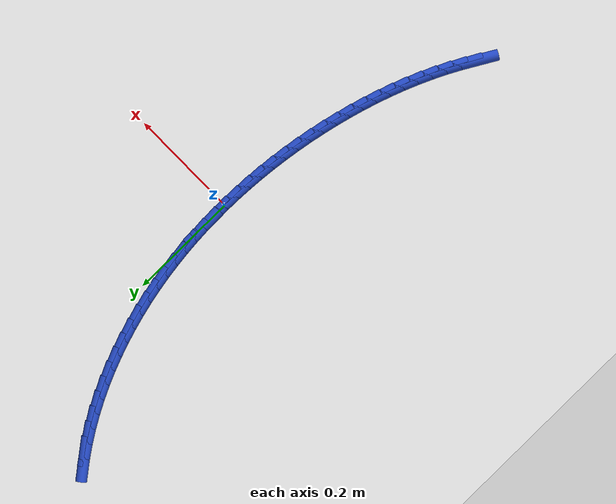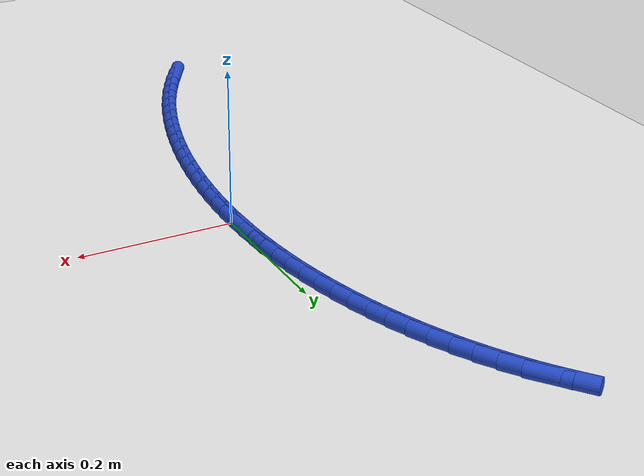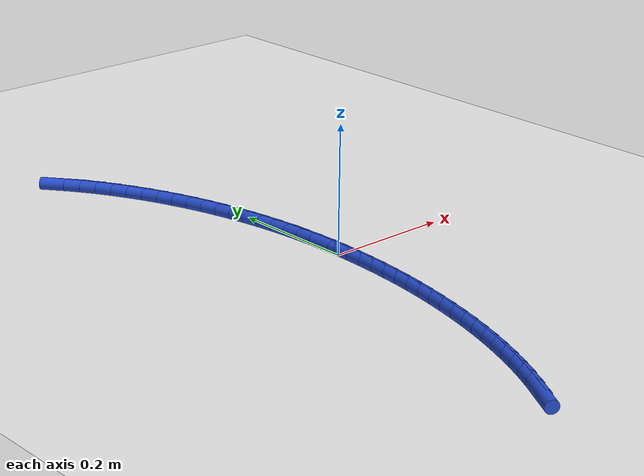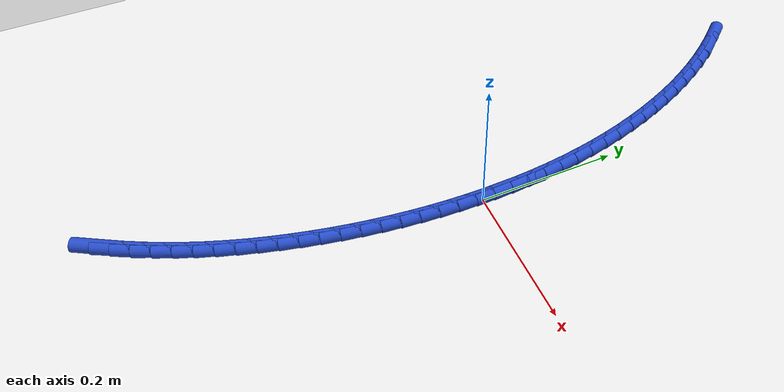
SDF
<sdf version="1.6">
 <world name="default">
  <model name="ground_plane">
   <static>1</static>
   <link name="link">
    <collision name="collision">
     <geometry><plane><normal>0 0 1</normal><size>100 100</size></plane></geometry>
     <surface><friction><ode><mu>100</mu><mu2>50</mu2></ode></friction></surface>
    </collision>
    <visual name="visual">
     <cast_shadows>0</cast_shadows>
     <geometry><plane><normal>0 0 1</normal><size>100 100</size></plane></geometry>
     <material>
      <script><uri>file://media/materials/scripts/gazebo.material</uri><name>Gazebo/WhiteGlow</name></script>
     </material>
    </visual>
   </link>
  </model>
  <model name="line">
   <link name="link_0">
    <pose>-1.3010426069826053e-17 -1.1102230246251565e-16 0.01 0 1.57 -1.5650336162759861</pose>
    <collision name="collision">
     <geometry><cylinder><radius>0.01</radius><length>0.08</length></cylinder></geometry>
    </collision>
    <visual name="visual">
     <material>
      <script><name>Gazebo/Blue</name><uri>file://media/materials/scripts/gazebo.material</uri></script>
     </material>
     <geometry><cylinder><radius>0.01</radius><length>0.08</length></cylinder></geometry>
    </visual>
   </link>
   <link name="link_1">
    <pose>-0.00015394781854984716 0.02671418491323485 0.01 0 1.57 -1.5384784487555527</pose>
    <collision name="collision">
     <geometry><cylinder><radius>0.01</radius><length>0.08</length></cylinder></geometry>
    </collision>
    <visual name="visual">
     <material>
      <script><name>Gazebo/Blue</name><uri>file://media/materials/scripts/gazebo.material</uri></script>
     </material>
     <geometry><cylinder><radius>0.01</radius><length>0.08</length></cylinder></geometry>
    </visual>
   </link>
   <link name="link_2">
    <pose>-0.0010168731685485336 0.05340606431002454 0.01 0 1.57 -1.5110991230828021</pose>
    <collision name="collision">
     <geometry><cylinder><radius>0.01</radius><length>0.08</length></cylinder></geometry>
    </collision>
    <visual name="visual">
     <material>
      <script><name>Gazebo/Blue</name><uri>file://media/materials/scripts/gazebo.material</uri></script>
     </material>
     <geometry><cylinder><radius>0.01</radius><length>0.08</length></cylinder></geometry>
    </visual>
   </link>
   <link name="link_3">
    <pose>-0.0026101452453956065 0.08006357672868039 0.01 0 1.57 -1.482902638969219</pose>
    <collision name="collision">
     <geometry><cylinder><radius>0.01</radius><length>0.08</length></cylinder></geometry>
    </collision>
    <visual name="visual">
     <material>
      <script><name>Gazebo/Blue</name><uri>file://media/materials/scripts/gazebo.material</uri></script>
     </material>
     <geometry><cylinder><radius>0.01</radius><length>0.08</length></cylinder></geometry>
    </visual>
   </link>
   <link name="link_4">
    <pose>-0.004955133244490608 0.10667466070751394 0.01 0 1.57 -1.4539016090968433</pose>
    <collision name="collision">
     <geometry><cylinder><radius>0.01</radius><length>0.08</length></cylinder></geometry>
    </collision>
    <visual name="visual">
     <material>
      <script><name>Gazebo/Blue</name><uri>file://media/materials/scripts/gazebo.material</uri></script>
     </material>
     <geometry><cylinder><radius>0.01</radius><length>0.08</length></cylinder></geometry>
    </visual>
   </link>
   <link name="link_5">
    <pose>-0.008073206361233065 0.13322725478483652 0.01 0 1.57 -1.42411477450039</pose>
    <collision name="collision">
     <geometry><cylinder><radius>0.01</radius><length>0.08</length></cylinder></geometry>
    </collision>
    <visual name="visual">
     <material>
      <script><name>Gazebo/Blue</name><uri>file://media/materials/scripts/gazebo.material</uri></script>
     </material>
     <geometry><cylinder><radius>0.01</radius><length>0.08</length></cylinder></geometry>
    </visual>
   </link>
   <link name="link_6">
    <pose>-0.011985733791022524 0.15970929749895976 0.01 0 1.57 -1.3935674610541722</pose>
    <collision name="collision">
     <geometry><cylinder><radius>0.01</radius><length>0.08</length></cylinder></geometry>
    </collision>
    <visual name="visual">
     <material>
      <script><name>Gazebo/Blue</name><uri>file://media/materials/scripts/gazebo.material</uri></script>
     </material>
     <geometry><cylinder><radius>0.01</radius><length>0.08</length></cylinder></geometry>
    </visual>
   </link>
   <link name="link_7">
    <pose>-0.016714084729258505 0.18610872738819487 0.01 0 1.57 -1.3622919516019611</pose>
    <collision name="collision">
     <geometry><cylinder><radius>0.01</radius><length>0.08</length></cylinder></geometry>
    </collision>
    <visual name="visual">
     <material>
      <script><name>Gazebo/Blue</name><uri>file://media/materials/scripts/gazebo.material</uri></script>
     </material>
     <geometry><cylinder><radius>0.01</radius><length>0.08</length></cylinder></geometry>
    </visual>
   </link>
   <link name="link_8">
    <pose>-0.022279628371340565 0.21241348299085358 0.01 0 1.57 -1.330327747234454</pose>
    <collision name="collision">
     <geometry><cylinder><radius>0.01</radius><length>0.08</length></cylinder></geometry>
    </collision>
    <visual name="visual">
     <material>
      <script><name>Gazebo/Blue</name><uri>file://media/materials/scripts/gazebo.material</uri></script>
     </material>
     <geometry><cylinder><radius>0.01</radius><length>0.08</length></cylinder></geometry>
    </visual>
   </link>
   <link name="link_9">
    <pose>-0.02870373391266822 0.23861150284524713 0.01 0 1.57 -1.2977178127041347</pose>
    <collision name="collision">
     <geometry><cylinder><radius>0.01</radius><length>0.08</length></cylinder></geometry>
    </collision>
    <visual name="visual">
     <material>
      <script><name>Gazebo/Blue</name><uri>file://media/materials/scripts/gazebo.material</uri></script>
     </material>
     <geometry><cylinder><radius>0.01</radius><length>0.08</length></cylinder></geometry>
    </visual>
   </link>
   <link name="link_10">
    <pose>-0.036007256895986293 0.2646885019854826 0.01 0 1.57 -1.2644138853128541</pose>
    <collision name="collision">
     <geometry><cylinder><radius>0.01</radius><length>0.08</length></cylinder></geometry>
    </collision>
    <visual name="visual">
     <material>
      <script><name>Gazebo/Blue</name><uri>file://media/materials/scripts/gazebo.material</uri></script>
     </material>
     <geometry><cylinder><radius>0.01</radius><length>0.08</length></cylinder></geometry>
    </visual>
   </link>
   <link name="link_11">
    <pose>-0.04420378079151405 0.29059871603309645 0.01 0 1.57 -1.2302507836768217</pose>
    <collision name="collision">
     <geometry><cylinder><radius>0.01</radius><length>0.08</length></cylinder></geometry>
    </collision>
    <visual name="visual">
     <material>
      <script><name>Gazebo/Blue</name><uri>file://media/materials/scripts/gazebo.material</uri></script>
     </material>
     <geometry><cylinder><radius>0.01</radius><length>0.08</length></cylinder></geometry>
    </visual>
   </link>
   <link name="link_12">
    <pose>-0.05330149532814814 0.3162730321339608 0.01 0 1.57 -1.1950746123892246</pose>
    <collision name="collision">
     <geometry><cylinder><radius>0.01</radius><length>0.08</length></cylinder></geometry>
    </collision>
    <visual name="visual">
     <material>
      <script><name>Gazebo/Blue</name><uri>file://media/materials/scripts/gazebo.material</uri></script>
     </material>
     <geometry><cylinder><radius>0.01</radius><length>0.08</length></cylinder></geometry>
    </visual>
   </link>
   <link name="link_13">
    <pose>-0.06330846279405351 0.341641785767369 0.01 0 1.57 -1.158734699838362</pose>
    <collision name="collision">
     <geometry><cylinder><radius>0.01</radius><length>0.08</length></cylinder></geometry>
    </collision>
    <visual name="visual">
     <material>
      <script><name>Gazebo/Blue</name><uri>file://media/materials/scripts/gazebo.material</uri></script>
     </material>
     <geometry><cylinder><radius>0.01</radius><length>0.08</length></cylinder></geometry>
    </visual>
   </link>
   <link name="link_14">
    <pose>-0.07423274547739507 0.3666353124126141 0.01 0 1.57 -1.1210831322339245</pose>
    <collision name="collision">
     <geometry><cylinder><radius>0.01</radius><length>0.08</length></cylinder></geometry>
    </collision>
    <visual name="visual">
     <material>
      <script><name>Gazebo/Blue</name><uri>file://media/materials/scripts/gazebo.material</uri></script>
     </material>
     <geometry><cylinder><radius>0.01</radius><length>0.08</length></cylinder></geometry>
    </visual>
   </link>
   <link name="link_15">
    <pose>-0.08608240566633785 0.39118394754898955 0.01 0 1.57 -1.081975906738686</pose>
    <collision name="collision">
     <geometry><cylinder><radius>0.01</radius><length>0.08</length></cylinder></geometry>
    </collision>
    <visual name="visual">
     <material>
      <script><name>Gazebo/Blue</name><uri>file://media/materials/scripts/gazebo.material</uri></script>
     </material>
     <geometry><cylinder><radius>0.01</radius><length>0.08</length></cylinder></geometry>
    </visual>
   </link>
   <link name="link_16">
    <pose>-0.09886550564904673 0.4152180266557885 0.01 0 1.57 -1.0412748395296416</pose>
    <collision name="collision">
     <geometry><cylinder><radius>0.01</radius><length>0.08</length></cylinder></geometry>
    </collision>
    <visual name="visual">
     <material>
      <script><name>Gazebo/Blue</name><uri>file://media/materials/scripts/gazebo.material</uri></script>
     </material>
     <geometry><cylinder><radius>0.01</radius><length>0.08</length></cylinder></geometry>
    </visual>
   </link>
   <link name="link_17">
    <pose>-0.1125901077136867 0.4386678852123042 0.01 0 1.57 -0.9988503320855717</pose>
    <collision name="collision">
     <geometry><cylinder><radius>0.01</radius><length>0.08</length></cylinder></geometry>
    </collision>
    <visual name="visual">
     <material>
      <script><name>Gazebo/Blue</name><uri>file://media/materials/scripts/gazebo.material</uri></script>
     </material>
     <geometry><cylinder><radius>0.01</radius><length>0.08</length></cylinder></geometry>
    </visual>
   </link>
   <link name="link_18">
    <pose>-0.12726427414842273 0.46146385869782985 0.01 0 1.57 -0.9545850886975823</pose>
    <collision name="collision">
     <geometry><cylinder><radius>0.01</radius><length>0.08</length></cylinder></geometry>
    </collision>
    <visual name="visual">
     <material>
      <script><name>Gazebo/Blue</name><uri>file://media/materials/scripts/gazebo.material</uri></script>
     </material>
     <geometry><cylinder><radius>0.01</radius><length>0.08</length></cylinder></geometry>
    </visual>
   </link>
   <link name="link_19">
    <pose>-0.14289606724141962 0.4835362825916587 0.01 0 1.57 -0.9083788448806125</pose>
    <collision name="collision">
     <geometry><cylinder><radius>0.01</radius><length>0.08</length></cylinder></geometry>
    </collision>
    <visual name="visual">
     <material>
      <script><name>Gazebo/Blue</name><uri>file://media/materials/scripts/gazebo.material</uri></script>
     </material>
     <geometry><cylinder><radius>0.01</radius><length>0.08</length></cylinder></geometry>
    </visual>
   </link>
   <link name="link_231">
    <pose>-0.1268273923434825 -0.4870535307334644 0.01 0 1.57 1.050715738726765</pose>
    <collision name="collision">
     <geometry><cylinder><radius>0.01</radius><length>0.08</length></cylinder></geometry>
    </collision>
    <visual name="visual">
     <material>
      <script><name>Gazebo/Blue</name><uri>file://media/materials/scripts/gazebo.material</uri></script>
     </material>
     <geometry><cylinder><radius>0.01</radius><length>0.08</length></cylinder></geometry>
    </visual>
   </link>
   <link name="link_232">
    <pose>-0.11343771538399033 -0.46367234430833015 0.01 0 1.57 1.086241364488328</pose>
    <collision name="collision">
     <geometry><cylinder><radius>0.01</radius><length>0.08</length></cylinder></geometry>
    </collision>
    <visual name="visual">
     <material>
      <script><name>Gazebo/Blue</name><uri>file://media/materials/scripts/gazebo.material</uri></script>
     </material>
     <geometry><cylinder><radius>0.01</radius><length>0.08</length></cylinder></geometry>
    </visual>
   </link>
   <link name="link_233">
    <pose>-0.10092101919471484 -0.43989506586959504 0.01 0 1.57 1.1205777809791402</pose>
    <collision name="collision">
     <geometry><cylinder><radius>0.01</radius><length>0.08</length></cylinder></geometry>
    </collision>
    <visual name="visual">
     <material>
      <script><name>Gazebo/Blue</name><uri>file://media/materials/scripts/gazebo.material</uri></script>
     </material>
     <geometry><cylinder><radius>0.01</radius><length>0.08</length></cylinder></geometry>
    </visual>
   </link>
   <link name="link_234">
    <pose>-0.08925045029959981 -0.41574862674912244 0.01 0 1.57 1.1536799257435049</pose>
    <collision name="collision">
     <geometry><cylinder><radius>0.01</radius><length>0.08</length></cylinder></geometry>
    </collision>
    <visual name="visual">
     <material>
      <script><name>Gazebo/Blue</name><uri>file://media/materials/scripts/gazebo.material</uri></script>
     </material>
     <geometry><cylinder><radius>0.01</radius><length>0.08</length></cylinder></geometry>
    </visual>
   </link>
   <link name="link_235">
    <pose>-0.07839905377800592 -0.391259915554946 0.01 0 1.57 1.1855188494950974</pose>
    <collision name="collision">
     <geometry><cylinder><radius>0.01</radius><length>0.08</length></cylinder></geometry>
    </collision>
    <visual name="visual">
     <material>
      <script><name>Gazebo/Blue</name><uri>file://media/materials/scripts/gazebo.material</uri></script>
     </material>
     <geometry><cylinder><radius>0.01</radius><length>0.08</length></cylinder></geometry>
    </visual>
   </link>
   <link name="link_236">
    <pose>-0.06833987470929383 -0.36645582089509926 0.01 0 1.57 1.2160778881664698</pose>
    <collision name="collision">
     <geometry><cylinder><radius>0.01</radius><length>0.08</length></cylinder></geometry>
    </collision>
    <visual name="visual">
     <material>
      <script><name>Gazebo/Blue</name><uri>file://media/materials/scripts/gazebo.material</uri></script>
     </material>
     <geometry><cylinder><radius>0.01</radius><length>0.08</length></cylinder></geometry>
    </visual>
   </link>
   <link name="link_237">
    <pose>-0.05904595817282425 -0.3413632313776157 0.01 0 1.57 1.2453511818848297</pose>
    <collision name="collision">
     <geometry><cylinder><radius>0.01</radius><length>0.08</length></cylinder></geometry>
    </collision>
    <visual name="visual">
     <material>
      <script><name>Gazebo/Blue</name><uri>file://media/materials/scripts/gazebo.material</uri></script>
     </material>
     <geometry><cylinder><radius>0.01</radius><length>0.08</length></cylinder></geometry>
    </visual>
   </link>
   <link name="link_238">
    <pose>-0.0504903492479578 -0.3160090356105288 0.01 0 1.57 1.273342142692541</pose>
    <collision name="collision">
     <geometry><cylinder><radius>0.01</radius><length>0.08</length></cylinder></geometry>
    </collision>
    <visual name="visual">
     <material>
      <script><name>Gazebo/Blue</name><uri>file://media/materials/scripts/gazebo.material</uri></script>
     </material>
     <geometry><cylinder><radius>0.01</radius><length>0.08</length></cylinder></geometry>
    </visual>
   </link>
   <link name="link_239">
    <pose>-0.042646093014055204 -0.2904201222018723 0.01 0 1.57 1.3000619364187402</pose>
    <collision name="collision">
     <geometry><cylinder><radius>0.01</radius><length>0.08</length></cylinder></geometry>
    </collision>
    <visual name="visual">
     <material>
      <script><name>Gazebo/Blue</name><uri>file://media/materials/scripts/gazebo.material</uri></script>
     </material>
     <geometry><cylinder><radius>0.01</radius><length>0.08</length></cylinder></geometry>
    </visual>
   </link>
   <link name="link_240">
    <pose>-0.03548623455047727 -0.2646233797596801 0.01 0 1.57 1.3255398251447066</pose>
    <collision name="collision">
     <geometry><cylinder><radius>0.01</radius><length>0.08</length></cylinder></geometry>
    </collision>
    <visual name="visual">
     <material>
      <script><name>Gazebo/Blue</name><uri>file://media/materials/scripts/gazebo.material</uri></script>
     </material>
     <geometry><cylinder><radius>0.01</radius><length>0.08</length></cylinder></geometry>
    </visual>
   </link>
   <link name="link_241">
    <pose>-0.028984124755125865 -0.23864561760795006 0.01 0 1.57 1.350297153858266</pose>
    <collision name="collision">
     <geometry><cylinder><radius>0.01</radius><length>0.08</length></cylinder></geometry>
    </collision>
    <visual name="visual">
     <material>
      <script><name>Gazebo/Blue</name><uri>file://media/materials/scripts/gazebo.material</uri></script>
     </material>
     <geometry><cylinder><radius>0.01</radius><length>0.08</length></cylinder></geometry>
    </visual>
   </link>
   <link name="link_242">
    <pose>-0.023126057845381312 -0.2125102894906654 0.01 0 1.57 1.3750303522506282</pose>
    <collision name="collision">
     <geometry><cylinder><radius>0.01</radius><length>0.08</length></cylinder></geometry>
    </collision>
    <visual name="visual">
     <material>
      <script><name>Gazebo/Blue</name><uri>file://media/materials/scripts/gazebo.material</uri></script>
     </material>
     <geometry><cylinder><radius>0.01</radius><length>0.08</length></cylinder></geometry>
    </visual>
   </link>
   <link name="link_243">
    <pose>-0.017915778775011548 -0.18623632501544599 0.01 0 1.57 1.3998099872478642</pose>
    <collision name="collision">
     <geometry><cylinder><radius>0.01</radius><length>0.08</length></cylinder></geometry>
    </collision>
    <visual name="visual">
     <material>
      <script><name>Gazebo/Blue</name><uri>file://media/materials/scripts/gazebo.material</uri></script>
     </material>
     <geometry><cylinder><radius>0.01</radius><length>0.08</length></cylinder></geometry>
    </visual>
   </link>
   <link name="link_244">
    <pose>-0.013358265106100897 -0.15984233423387842 0.01 0 1.57 1.4246589322176</pose>
    <collision name="collision">
     <geometry><cylinder><radius>0.01</radius><length>0.08</length></cylinder></geometry>
    </collision>
    <visual name="visual">
     <material>
      <script><name>Gazebo/Blue</name><uri>file://media/materials/scripts/gazebo.material</uri></script>
     </material>
     <geometry><cylinder><radius>0.01</radius><length>0.08</length></cylinder></geometry>
    </visual>
   </link>
   <link name="link_245">
    <pose>-0.00945849440073368 -0.13334692719754912 0.01 0 1.57 1.4495998647647814</pose>
    <collision name="collision">
     <geometry><cylinder><radius>0.01</radius><length>0.08</length></cylinder></geometry>
    </collision>
    <visual name="visual">
     <material>
      <script><name>Gazebo/Blue</name><uri>file://media/materials/scripts/gazebo.material</uri></script>
     </material>
     <geometry><cylinder><radius>0.01</radius><length>0.08</length></cylinder></geometry>
    </visual>
   </link>
   <link name="link_246">
    <pose>-0.006221444220994201 -0.10676871395804444 0.01 0 1.57 1.4746552120526188</pose>
    <collision name="collision">
     <geometry><cylinder><radius>0.01</radius><length>0.08</length></cylinder></geometry>
    </collision>
    <visual name="visual">
     <material>
      <script><name>Gazebo/Blue</name><uri>file://media/materials/scripts/gazebo.material</uri></script>
     </material>
     <geometry><cylinder><radius>0.01</radius><length>0.08</length></cylinder></geometry>
    </visual>
   </link>
   <link name="link_247">
    <pose>-0.0036520921289667817 -0.08012630456695072 0.01 0 1.57 1.4998470911547002</pose>
    <collision name="collision">
     <geometry><cylinder><radius>0.01</radius><length>0.08</length></cylinder></geometry>
    </collision>
    <visual name="visual">
     <material>
      <script><name>Gazebo/Blue</name><uri>file://media/materials/scripts/gazebo.material</uri></script>
     </material>
     <geometry><cylinder><radius>0.01</radius><length>0.08</length></cylinder></geometry>
    </visual>
   </link>
   <link name="link_248">
    <pose>-0.0017554156867357336 -0.05343830907585452 0.01 0 1.57 1.5251972433000955</pose>
    <collision name="collision">
     <geometry><cylinder><radius>0.01</radius><length>0.08</length></cylinder></geometry>
    </collision>
    <visual name="visual">
     <material>
      <script><name>Gazebo/Blue</name><uri>file://media/materials/scripts/gazebo.material</uri></script>
     </material>
     <geometry><cylinder><radius>0.01</radius><length>0.08</length></cylinder></geometry>
    </visual>
   </link>
   <link name="link_249">
    <pose>-0.0005363924563853749 -0.026723337536342175 0.01 0 1.57 1.5507269609168555</pose>
    <collision name="collision">
     <geometry><cylinder><radius>0.01</radius><length>0.08</length></cylinder></geometry>
    </collision>
    <visual name="visual">
     <material>
      <script><name>Gazebo/Blue</name><uri>file://media/materials/scripts/gazebo.material</uri></script>
     </material>
     <geometry><cylinder><radius>0.01</radius><length>0.08</length></cylinder></geometry>
    </visual>
   </link>
   <link name="link_250">
    <pose>-1.951563910473908e-17 -1.3877787807814457e-16 0.01 0 1.57 -1.5651356471505447</pose>
    <collision name="collision">
     <geometry><cylinder><radius>0.01</radius><length>0.08</length></cylinder></geometry>
    </collision>
    <visual name="visual">
     <material>
      <script><name>Gazebo/Blue</name><uri>file://media/materials/scripts/gazebo.material</uri></script>
     </material>
     <geometry><cylinder><radius>0.01</radius><length>0.08</length></cylinder></geometry>
    </visual>
   </link>
   <link name="link_251">
    <pose>-0.0001512158796639837 0.0267130934815852 0.01 0 1.57 -1.5391851316645073</pose>
    <collision name="collision">
     <geometry><cylinder><radius>0.01</radius><length>0.08</length></cylinder></geometry>
    </collision>
    <visual name="visual">
     <material>
      <script><name>Gazebo/Blue</name><uri>file://media/materials/scripts/gazebo.material</uri></script>
     </material>
     <geometry><cylinder><radius>0.01</radius><length>0.08</length></cylinder></geometry>
    </visual>
   </link>
   <link name="link_252">
    <pose>-0.00099501765746158 0.05339733285682741 0.01 0 1.57 -1.5521642629785883</pose>
    <collision name="collision">
     <geometry><cylinder><radius>0.01</radius><length>0.08</length></cylinder></geometry>
    </collision>
    <visual name="visual">
     <material>
      <script><name>Gazebo/Blue</name><uri>file://media/materials/scripts/gazebo.material</uri></script>
     </material>
     <geometry><cylinder><radius>0.01</radius><length>0.08</length></cylinder></geometry>
    </visual>
   </link>
  </model>
 </world>
</sdf>
